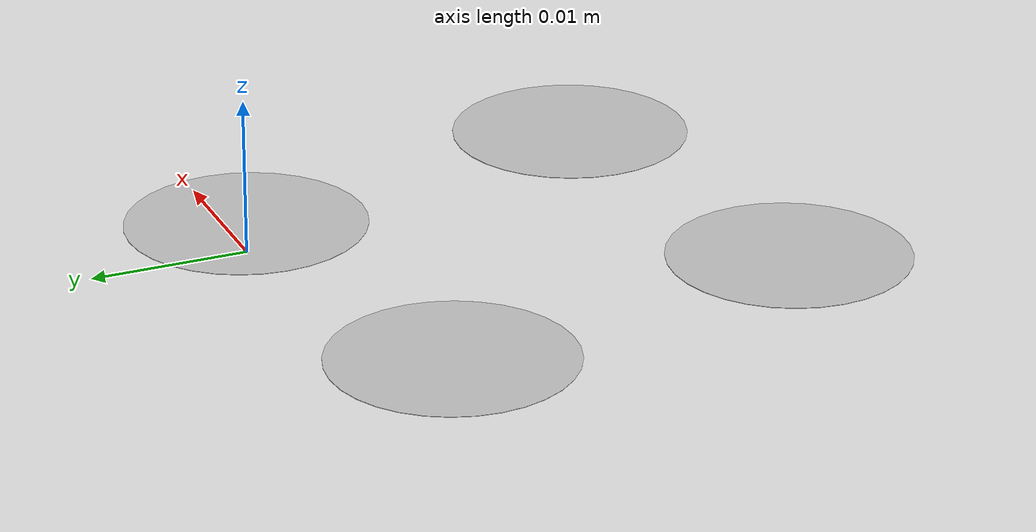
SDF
<?xml version="1.0"?>
<sdf version="1.4">
    <model name="led">
      <pose>0 0 0 0 0 0</pose>
      <static>true</static>
      <link name="link">
        <visual name="visual1">
          <pose>0 0 0.002 1.57 0 0</pose>
          <geometry>
            <mesh>
              <uri>model://led/meshes/led.obj</uri>
              <scale>3 3 3</scale>
            </mesh>
          </geometry>
        </visual>

        <visual name="visual2">
          <pose>-0.016992 -0.028538 0.002 1.57 0 0</pose>
          <geometry>
            <mesh>
              <uri>model://led/meshes/led.obj</uri>
              <scale>3 3 3</scale>
            </mesh>
          </geometry>
        </visual>

        <visual name="visual3">
          <pose>-0.022132 -0.004594 0.002 1.57 0 0</pose>
          <geometry>
            <mesh>
              <uri>model://led/meshes/led.obj</uri>
              <scale>3 3 3</scale>
            </mesh>
          </geometry>
        </visual>

        <visual name="visual4">
          <pose>0.00534 -0.023883 0.002 1.57 0 0</pose>
          <geometry>
            <mesh>
              <uri>model://led/meshes/led.obj</uri>
              <scale>3 3 3</scale>
            </mesh>
          </geometry>
        </visual>
      </link>
    </model>
</sdf>
